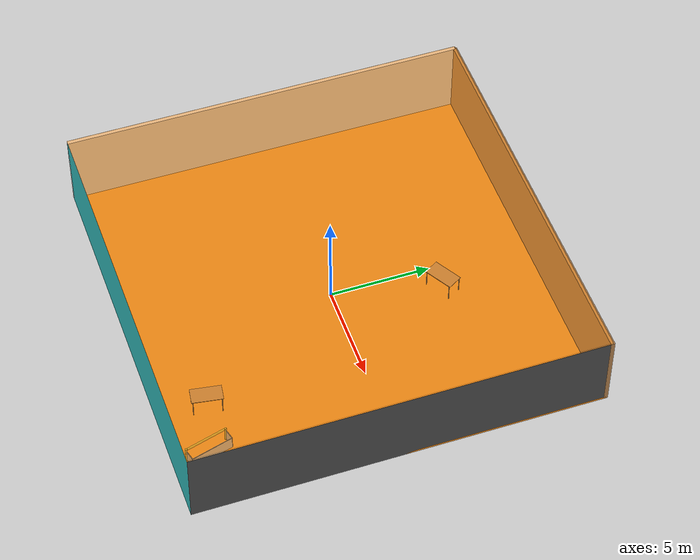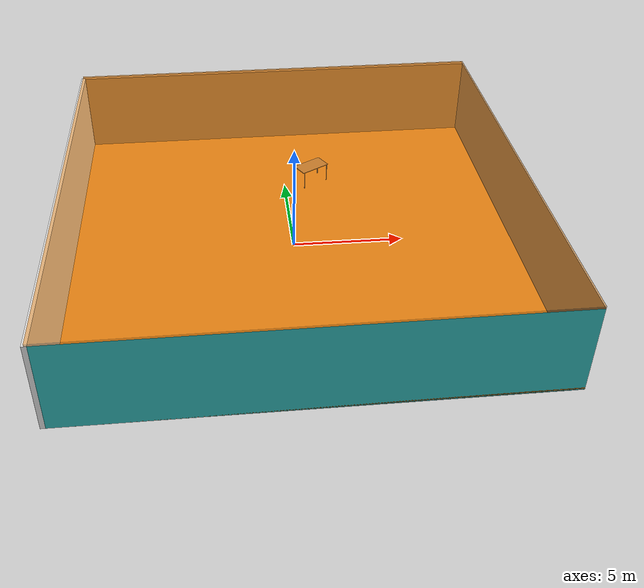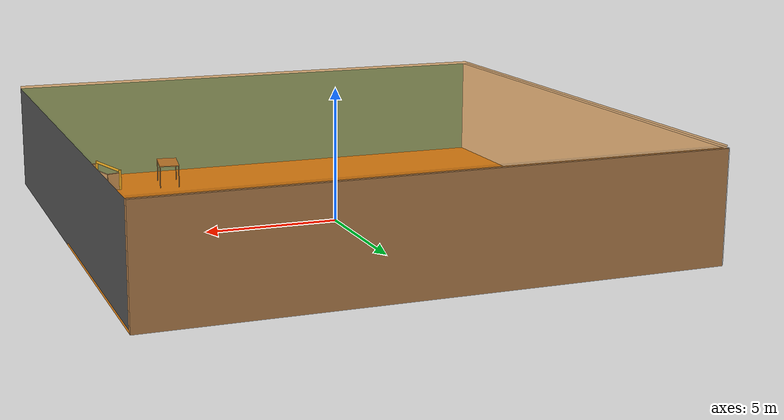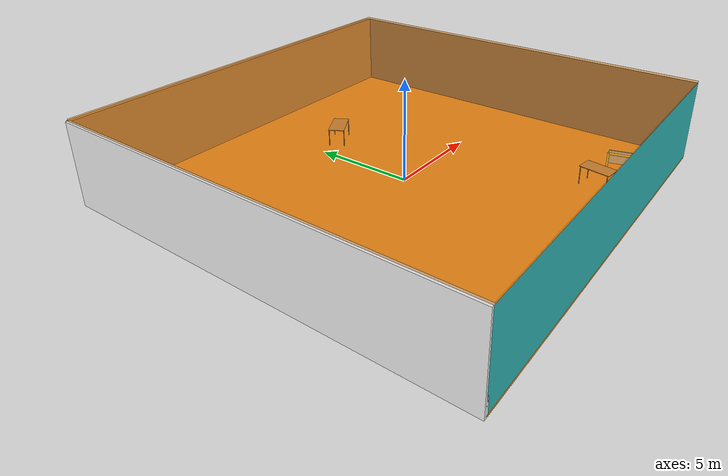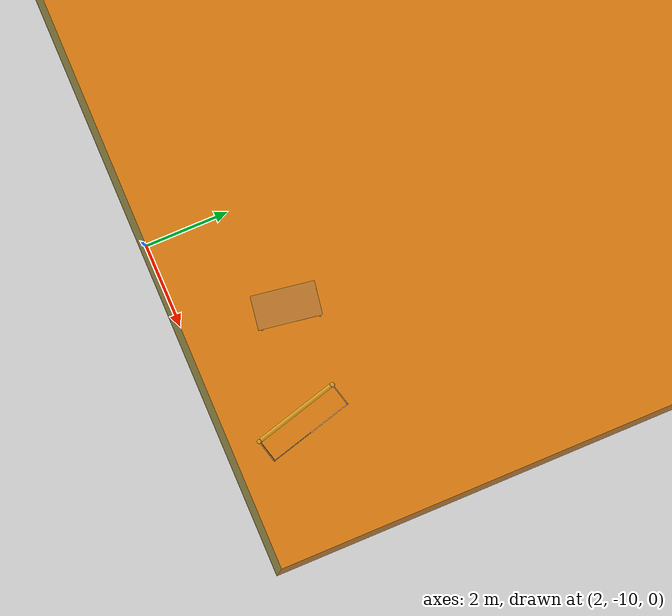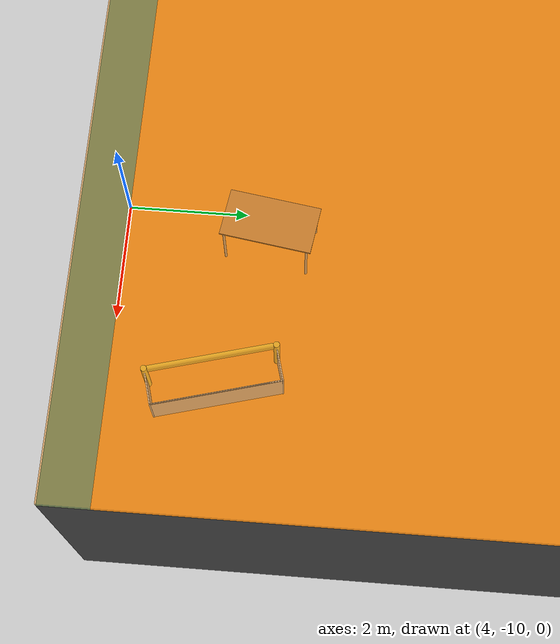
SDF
<sdf version="1.4">
 <world name="default">
  <physics type="ode">
   <max_step_size>0.001</max_step_size>
   <real_time_factor>1</real_time_factor>
   <real_time_update_rate>1000</real_time_update_rate>
   <gravity>0 0 -9.8</gravity>
  </physics>
  <scene><ambient>0.4 0.4 0.4 1</ambient><background>0.7 0.7 0.7 1</background><shadows>1</shadows></scene>
  <model name="Surrounding">
   <static>1</static>
   <link name="Ceiling">
    <collision name="Ceiling_Collision"><geometry><box><size>20 20 0.1</size></box></geometry></collision>
    <visual name="Ceiling_Visual">
     <geometry><box><size>20 20 0.1</size></box></geometry>
     <material>
      <script>
       <uri>file://media/materials/scripts/gazebo.material</uri>
       <name>Gazebo/OrangeTransparent</name>
      </script>
     </material>
    </visual>
    <pose>0 0 4.05 0 0 0</pose>
   </link>
   <link name="Wall_South">
    <collision name="Wall_South_Collision">
     <geometry><box><size>20 0 4</size></box></geometry>
     <pose>0 0 2 0 -0 0</pose>
    </collision>
    <visual name="Wall_South_Visual">
     <pose>0 0 2 0 -0 0</pose>
     <geometry><box><size>20 0 4</size></box></geometry>
     <material>
      <script>
       <uri>file://media/materials/scripts/gazebo.material</uri>
       <name>Gazebo/TurquoiseGlowOutline</name>
      </script>
     </material>
    </visual>
    <velocity_decay><linear>0</linear><angular>0</angular></velocity_decay>
    <pose>0 -10 0 0 -0 0</pose>
   </link>
   <link name="Wall_East">
    <collision name="Wall_21_Collision">
     <geometry><box><size>20 0 4</size></box></geometry>
     <pose>0 0 2 0 -0 0</pose>
    </collision>
    <visual name="Wall_21_Visual">
     <pose>0 0 2 0 -0 0</pose>
     <geometry><box><size>20 0 4</size></box></geometry>
     <material>
      <script><uri>file://media/materials/scripts/gazebo.material</uri><name>Gazebo/Road</name></script>
     </material>
    </visual>
    <velocity_decay><linear>0</linear><angular>0</angular></velocity_decay>
    <pose>10 0 0 0 -0 1.5708</pose>
   </link>
   <link name="Wall_North">
    <collision name="Wall_22_Collision">
     <geometry><box><size>20 0.2 4</size></box></geometry>
     <pose>0 0 2 0 -0 0</pose>
    </collision>
    <visual name="Wall_22_Visual">
     <pose>0 0 2 0 -0 0</pose>
     <geometry><box><size>20 0.2 4</size></box></geometry>
     <material>
      <script><uri>file://media/materials/scripts/gazebo.material</uri><name>Gazebo/WoodFloor</name></script>
     </material>
    </visual>
    <velocity_decay><linear>0</linear><angular>0</angular></velocity_decay>
    <pose>0 10 0 0 -0 0</pose>
   </link>
   <link name="Wall_West">
    <collision name="Wall_23_Collision">
     <geometry><box><size>20 0.2 4</size></box></geometry>
     <pose>0 0 2 0 -0 0</pose>
    </collision>
    <visual name="Wall_23_Visual">
     <pose>0 0 2 0 -0 0</pose>
     <geometry><box><size>20 0.2 4</size></box></geometry>
     <material>
      <script><uri>file://media/materials/scripts/gazebo.material</uri><name>Gazebo/White</name></script>
     </material>
    </visual>
    <velocity_decay><linear>0</linear><angular>0</angular></velocity_decay>
    <pose>-10 0 0 0 0 -1.5708</pose>
   </link>
   <link name="Ground_link">
    <collision name="collision">
     <pose>0 0 .05 0 -0 0</pose>
     <geometry><box><size>20 20 0.1</size></box></geometry>
    </collision>
    <visual name="visual">
     <pose>0 0 .05 0 -0 0</pose>
     <geometry><box><size>20 20 0.1</size></box></geometry>
     <material>
      <script><uri>file://media/materials/scripts/gazebo.material</uri><name>Gazebo/Orange</name></script>
     </material>
    </visual>
   </link>
   <static>1</static>
  </model>
  <spherical_coordinates>
   <surface_model>EARTH_WGS84</surface_model>
   <latitude_deg>0</latitude_deg>
   <longitude_deg>0</longitude_deg>
   <elevation>0</elevation>
   <heading_deg>0</heading_deg>
  </spherical_coordinates>
  <light name="lightball_0" type="diffuse">
   <diffuse>0.8 0.8 0.8 1</diffuse>
   <specular>0.2 0.2 0.2 1</specular>
   <attenuation>
    <range>100</range>
    <constant>0.7</constant>
    <linear>0.01</linear>
    <quadratic>0.001</quadratic>
   </attenuation>
   <direction>-0.5 0.1 -0.9</direction>
   <pose>-0.273776434891 -6.44614293631 2.83934280959 0 0 0</pose>
  </light>
  <light name="lightball_1" type="diffuse">
   <diffuse>0.8 0.8 0.8 1</diffuse>
   <specular>0.2 0.2 0.2 1</specular>
   <attenuation>
    <range>100</range>
    <constant>0.7</constant>
    <linear>0.01</linear>
    <quadratic>0.001</quadratic>
   </attenuation>
   <direction>-0.5 0.1 -0.9</direction>
   <pose>-3.80265577751 4.13581581557 3.80770076147 0 0 0</pose>
  </light>
  <light name="lightball_2" type="diffuse">
   <diffuse>0.8 0.8 0.8 1</diffuse>
   <specular>0.2 0.2 0.2 1</specular>
   <attenuation>
    <range>100</range>
    <constant>0.7</constant>
    <linear>0.01</linear>
    <quadratic>0.001</quadratic>
   </attenuation>
   <direction>-0.5 0.1 -0.9</direction>
   <pose>-5.65920478402 2.05818162713 1.63230330956 0 0 0</pose>
  </light>
  <light name="lightball_3" type="diffuse">
   <diffuse>0.8 0.8 0.8 1</diffuse>
   <specular>0.2 0.2 0.2 1</specular>
   <attenuation>
    <range>100</range>
    <constant>0.7</constant>
    <linear>0.01</linear>
    <quadratic>0.001</quadratic>
   </attenuation>
   <direction>-0.5 0.1 -0.9</direction>
   <pose>2.18023685562 -5.99641338836 2.78639901735 0 0 0</pose>
  </light>
  <light name="lightball_4" type="diffuse">
   <diffuse>0.8 0.8 0.8 1</diffuse>
   <specular>0.2 0.2 0.2 1</specular>
   <attenuation>
    <range>100</range>
    <constant>0.7</constant>
    <linear>0.01</linear>
    <quadratic>0.001</quadratic>
   </attenuation>
   <direction>-0.5 0.1 -0.9</direction>
   <pose>2.5112517521 -0.302689238652 2.62718511038 0 0 0</pose>
  </light>
  <light name="lightball_5" type="diffuse">
   <diffuse>0.8 0.8 0.8 1</diffuse>
   <specular>0.2 0.2 0.2 1</specular>
   <attenuation>
    <range>100</range>
    <constant>0.7</constant>
    <linear>0.01</linear>
    <quadratic>0.001</quadratic>
   </attenuation>
   <direction>-0.5 0.1 -0.9</direction>
   <pose>-8.82436969286 -2.95226252649 0.926161178194 0 0 0</pose>
  </light>
  <light name="lightball_6" type="diffuse">
   <diffuse>0.8 0.8 0.8 1</diffuse>
   <specular>0.2 0.2 0.2 1</specular>
   <attenuation>
    <range>100</range>
    <constant>0.7</constant>
    <linear>0.01</linear>
    <quadratic>0.001</quadratic>
   </attenuation>
   <direction>-0.5 0.1 -0.9</direction>
   <pose>1.02590615044 9.46408881572 3.85374570196 0 0 0</pose>
  </light>
  <light name="lightball_7" type="diffuse">
   <diffuse>0.8 0.8 0.8 1</diffuse>
   <specular>0.2 0.2 0.2 1</specular>
   <attenuation>
    <range>100</range>
    <constant>0.7</constant>
    <linear>0.01</linear>
    <quadratic>0.001</quadratic>
   </attenuation>
   <direction>-0.5 0.1 -0.9</direction>
   <pose>0.951999259962 1.29955391811 2.89155045078 0 0 0</pose>
  </light>
  <light name="lightball_8" type="diffuse">
   <diffuse>0.8 0.8 0.8 1</diffuse>
   <specular>0.2 0.2 0.2 1</specular>
   <attenuation>
    <range>100</range>
    <constant>0.7</constant>
    <linear>0.01</linear>
    <quadratic>0.001</quadratic>
   </attenuation>
   <direction>-0.5 0.1 -0.9</direction>
   <pose>-6.17469453983 0.80233262775 2.40391909685 0 0 0</pose>
  </light>
  <light name="lightball_9" type="diffuse">
   <diffuse>0.8 0.8 0.8 1</diffuse>
   <specular>0.2 0.2 0.2 1</specular>
   <attenuation>
    <range>100</range>
    <constant>0.7</constant>
    <linear>0.01</linear>
    <quadratic>0.001</quadratic>
   </attenuation>
   <direction>-0.5 0.1 -0.9</direction>
   <pose>0.504420191323 3.9383536645 1.56460141054 0 0 0</pose>
  </light>
  <include><uri>model://table</uri><pose>1.36295231443 5.20098928645 0 0 0 0.524486439685</pose></include>
  <include><uri>model://table</uri><pose>4.53328457844 -7.56578995924 0 0 0 1.4157880609</pose></include>
  <include>
   <uri>model://robocup_3Dsim_goal</uri>
   <pose>6.85308054259 -8.31369920682 0 0 0 0.263376585082</pose>
  </include>
 </world>
</sdf>

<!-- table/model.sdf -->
<sdf version="1.5">
  <model name="table">
    <static>true</static>
    <link name="link">
      <collision name="surface">
        <pose>0 0 1.0 0 0 0</pose>
        <geometry>
          <box>
            <size>1.5 0.8 0.03</size>
          </box>
        </geometry>
        <surface>
          <friction>
            <ode>
              <mu>0.6</mu>
              <mu2>0.6</mu2>
            </ode>
          </friction>
        </surface>
      </collision>
      <visual name="visual1">
        <pose>0 0 1.0 0 0 0</pose>
        <geometry>
          <box>
            <size>1.5 0.8 0.03</size>
          </box>
        </geometry>
        <material>
          <script>
            <uri>model://media/materials/scripts/gazebo.material</uri>
            <name>Gazebo/Wood</name>
          </script>
        </material>
      </visual>
      <collision name="front_left_leg">
        <pose>0.68 0.38 0.5 0 0 0</pose>
        <geometry>
          <cylinder>
            <radius>0.02</radius>
            <length>1.0</length>
          </cylinder>
        </geometry>
      </collision>
      <visual name="front_left_leg">
        <pose>0.68 0.38 0.5 0 0 0</pose>
        <geometry>
          <cylinder>
            <radius>0.02</radius>
            <length>1.0</length>
          </cylinder>
        </geometry>
        <material>
          <script>
            <uri>model://media/materials/scripts/gazebo.material</uri>
            <name>Gazebo/Grey</name>
          </script>
        </material>
      </visual>
      <collision name="front_right_leg">
        <pose>0.68 -0.38 0.5 0 0 0</pose>
        <geometry>
          <cylinder>
            <radius>0.02</radius>
            <length>1.0</length>
          </cylinder>
        </geometry>
      </collision>
      <visual name="front_right_leg">
        <pose>0.68 -0.38 0.5 0 0 0</pose>
        <geometry>
          <cylinder>
            <radius>0.02</radius>
            <length>1.0</length>
          </cylinder>
        </geometry>
        <material>
          <script>
            <uri>model://media/materials/scripts/gazebo.material</uri>
            <name>Gazebo/Grey</name>
          </script>
        </material>
      </visual>
      <collision name="back_right_leg">
        <pose>-0.68 -0.38 0.5 0 0 0</pose>
        <geometry>
          <cylinder>
            <radius>0.02</radius>
            <length>1.0</length>
          </cylinder>
        </geometry>
      </collision>
      <visual name="back_right_leg">
        <pose>-0.68 -0.38 0.5 0 0 0</pose>
        <geometry>
          <cylinder>
            <radius>0.02</radius>
            <length>1.0</length>
          </cylinder>
        </geometry>
        <material>
          <script>
            <uri>model://media/materials/scripts/gazebo.material</uri>
            <name>Gazebo/Grey</name>
          </script>
        </material>
      </visual>
      <collision name="back_left_leg">
        <pose>-0.68 0.38 0.5 0 0 0</pose>
        <geometry>
          <cylinder>
            <radius>0.02</radius>
            <length>1.0</length>
          </cylinder>
        </geometry>
      </collision>
      <visual name="back_left_leg">
        <pose>-0.68 0.38 0.5 0 0 0</pose>
        <geometry>
          <cylinder>
            <radius>0.02</radius>
            <length>1.0</length>
          </cylinder>
        </geometry>
        <material>
          <script>
            <uri>model://media/materials/scripts/gazebo.material</uri>
            <name>Gazebo/Grey</name>
          </script>
        </material>
      </visual>
    </link>
  </model>
</sdf>

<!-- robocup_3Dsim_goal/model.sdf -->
<sdf version="1.5">
  <model name="robocup_3d_goal">
    <static>true</static>
    <link name="left_post">
      <pose>0 1.05 0.45 0 0 0</pose>
      <collision name="collision">
        <geometry>
          <cylinder>
            <radius>0.05</radius>
            <length>0.9</length>
          </cylinder>
        </geometry>
      </collision>
      <visual name="visual">
        <geometry>
          <cylinder>
            <radius>0.05</radius>
            <length>0.9</length>
          </cylinder>
        </geometry>
        <material>
          <script>
            <uri>file://media/materials/scripts/gazebo.material</uri>
            <name>Gazebo/ZincYellow</name>
          </script>
        </material>
      </visual>
    </link>
    <link name="left_support_horiz_lower">
      <pose>0.30 1.05 0.01 0 0 0</pose>
      <collision name="collision">
        <geometry>
          <box>
            <size>0.50 0.02 0.02</size>
          </box>
        </geometry>
      </collision>
      <visual name="visual">
        <geometry>
          <box>
            <size>0.50 0.02 0.02</size>
          </box>
        </geometry>
        <material>
          <script>
            <uri>file://media/materials/scripts/gazebo.material</uri>
            <name>Gazebo/White</name>
          </script>
        </material>
      </visual>
    </link>
    <link name="left_support_horiz_upper">
      <pose>0.30 1.05 0.79 0 0 0</pose>
      <collision name="collision">
        <geometry>
          <box>
            <size>0.50 0.02 0.02</size>
          </box>
        </geometry>
      </collision>
      <visual name="visual">
        <geometry>
          <box>
            <size>0.50 0.02 0.02</size>
          </box>
        </geometry>
        <material>
          <script>
            <uri>file://media/materials/scripts/gazebo.material</uri>
            <name>Gazebo/White</name>
          </script>
        </material>
      </visual>
    </link>
    <link name="left_support_vertical">
      <pose>0.56 1.05 0.4 0 1.5708 0</pose>
      <collision name="collision">
        <geometry>
          <box>
            <size>0.80 0.02 0.02</size>
          </box>
        </geometry>
      </collision>
      <visual name="visual">
        <geometry>
          <box>
            <size>0.80 0.02 0.02</size>
          </box>
        </geometry>
        <material>
          <script>
            <uri>file://media/materials/scripts/gazebo.material</uri>
            <name>Gazebo/White</name>
          </script>
        </material>
      </visual>
    </link>
    <link name="right_support_horiz_lower">
      <pose>0.30 -1.05 0.01 0 0 0</pose>
      <collision name="collision">
        <geometry>
          <box>
            <size>0.50 0.02 0.02</size>
          </box>
        </geometry>
      </collision>
      <visual name="visual">
        <geometry>
          <box>
            <size>0.50 0.02 0.02</size>
          </box>
        </geometry>
        <material>
          <script>
            <uri>file://media/materials/scripts/gazebo.material</uri>
            <name>Gazebo/White</name>
          </script>
        </material>
      </visual>
    </link>
    <link name="right_support_horiz_upper">
      <pose>0.30 -1.05 0.79 0 0 0</pose>
      <collision name="collision">
        <geometry>
          <box>
            <size>0.50 0.02 0.02</size>
          </box>
        </geometry>
      </collision>
      <visual name="visual">
        <geometry>
          <box>
            <size>0.50 0.02 0.02</size>
          </box>
        </geometry>
        <material>
          <script>
            <uri>file://media/materials/scripts/gazebo.material</uri>
            <name>Gazebo/White</name>
          </script>
        </material>
      </visual>
    </link>
    <link name="right_support_vertical">
      <pose>0.56 -1.05 0.4 0 1.5708 0</pose>
      <collision name="collision">
        <geometry>
          <box>
            <size>0.80 0.02 0.02</size>
          </box>
        </geometry>
      </collision>
      <visual name="visual">
        <geometry>
          <box>
            <size>0.80 0.02 0.02</size>
          </box>
        </geometry>
        <material>
          <script>
            <uri>file://media/materials/scripts/gazebo.material</uri>
            <name>Gazebo/White</name>
          </script>
        </material>
      </visual>
    </link>
    <link name="center_support_horiz_lower">
      <pose>0.56 0 0.01 0 1.5708 0</pose>
      <collision name="collision">
        <geometry>
          <box>
            <size>0.02 2.08 0.02</size>
          </box>
        </geometry>
      </collision>
      <visual name="visual">
        <geometry>
          <box>
            <size>0.02 2.08 0.02</size>
          </box>
        </geometry>
        <material>
          <script>
            <uri>file://media/materials/scripts/gazebo.material</uri>
            <name>Gazebo/White</name>
          </script>
        </material>
      </visual>
    </link>
    <link name="center_support_horiz_upper">
      <pose>0.56 0 0.79 0 1.5708 0</pose>
      <collision name="collision">
        <geometry>
          <box>
            <size>0.02 2.08 0.02</size>
          </box>
        </geometry>
      </collision>
      <visual name="visual">
        <geometry>
          <box>
            <size>0.02 2.08 0.02</size>
          </box>
        </geometry>
        <material>
          <script>
            <uri>file://media/materials/scripts/gazebo.material</uri>
            <name>Gazebo/White</name>
          </script>
        </material>
      </visual>
    </link>
    <link name="right_post">
      <pose>0 -1.05 0.45 0 0 0</pose>
      <collision name="collision">
        <geometry>
          <cylinder>
            <radius>0.05</radius>
            <length>0.9</length>
          </cylinder>
        </geometry>
      </collision>
      <visual name="visual">
        <geometry>
          <cylinder>
            <radius>0.05</radius>
            <length>0.9</length>
          </cylinder>
        </geometry>
        <material>
          <script>
            <uri>file://media/materials/scripts/gazebo.material</uri>
            <name>Gazebo/ZincYellow</name>
          </script>
        </material>
      </visual>
    </link>
    <link name="crossbar">
      <pose>0 0 0.85 1.57 1.57 0</pose>
      <collision name="collision">
        <geometry>
          <cylinder>
            <radius>0.05</radius>
            <length>2.0</length>
          </cylinder>
        </geometry>
      </collision>
      <visual name="visual">
        <geometry>
          <cylinder>
            <radius>0.05</radius>
            <length>2.0</length>
          </cylinder>
        </geometry>
        <material>
          <script>
            <uri>file://media/materials/scripts/gazebo.material</uri>
            <name>Gazebo/ZincYellow</name>
          </script>
        </material>
      </visual>
    </link>
    <link name="center_net">
      <pose>0.56 0 0.40 0 0 0</pose>
      <collision name="collision">
        <geometry>
          <box>
            <size>0.01 2.1 0.80</size>
          </box>
        </geometry>
      </collision>
      <visual name="visual">
        <geometry>
          <box>
            <size>0.01 2.1 0.80</size>
          </box>
        </geometry>
        <material>
          <script>
            <uri>model://../model_source/models/robocup09_spl_field/materials/scripts/</uri>
            <uri>model://../model_source/models/robocup09_spl_field/materials/textures/</uri>
            <name>RoboCup/Net</name>
          </script>
        </material>
      </visual>
    </link>
    <link name="left_net">
      <pose>0.30 1.05 0.40 0 0 0</pose>
      <collision name="collision">
        <geometry>
          <box>
            <size>0.50 0.01 0.76</size>
          </box>
        </geometry>
      </collision>
      <visual name="visual">
        <geometry>
          <box>
            <size>0.50 0.01 0.76</size>
          </box>
        </geometry>
        <material>
          <script>
            <uri>model://../model_source/models/robocup09_spl_field/materials/scripts/</uri>
            <uri>model://../model_source/models/robocup09_spl_field/materials/textures/</uri>
            <name>RoboCup/Net</name>
          </script>
        </material>
      </visual>
    </link>
    <link name="right_net">
      <pose>0.30 -1.05 0.40 0 0 0</pose>
      <collision name="collision">
        <geometry>
          <box>
            <size>0.50 0.01 0.76</size>
          </box>
        </geometry>
      </collision>
      <visual name="visual">
        <geometry>
          <box>
            <size>0.50 0.01 0.76</size>
          </box>
        </geometry>
        <material>
          <script>
            <uri>model://../model_source/models/robocup09_spl_field/materials/scripts/</uri>
            <uri>model://../model_source/models/robocup09_spl_field/materials/textures/</uri>
            <name>RoboCup/Net</name>
          </script>
        </material>
      </visual>
    </link>
  </model>
</sdf>
